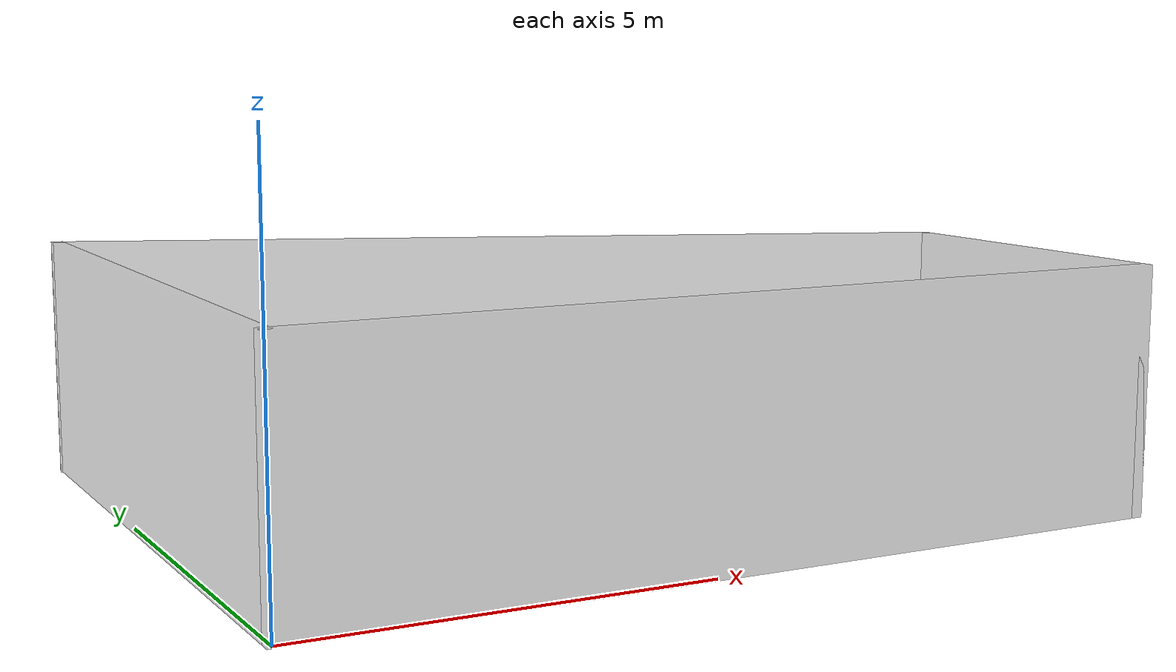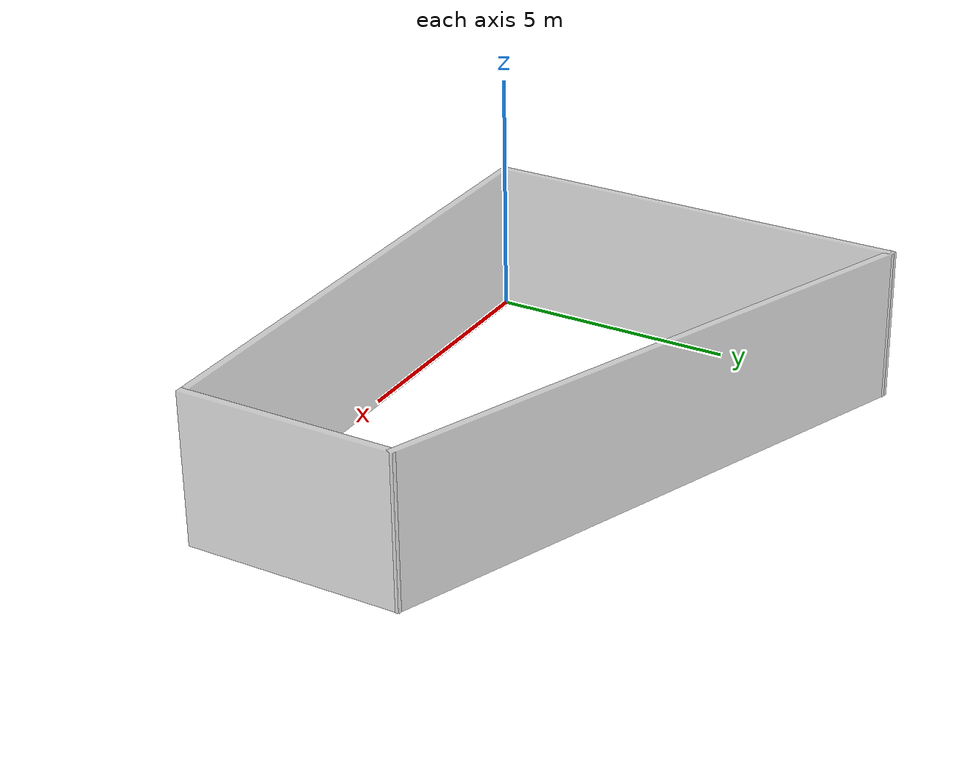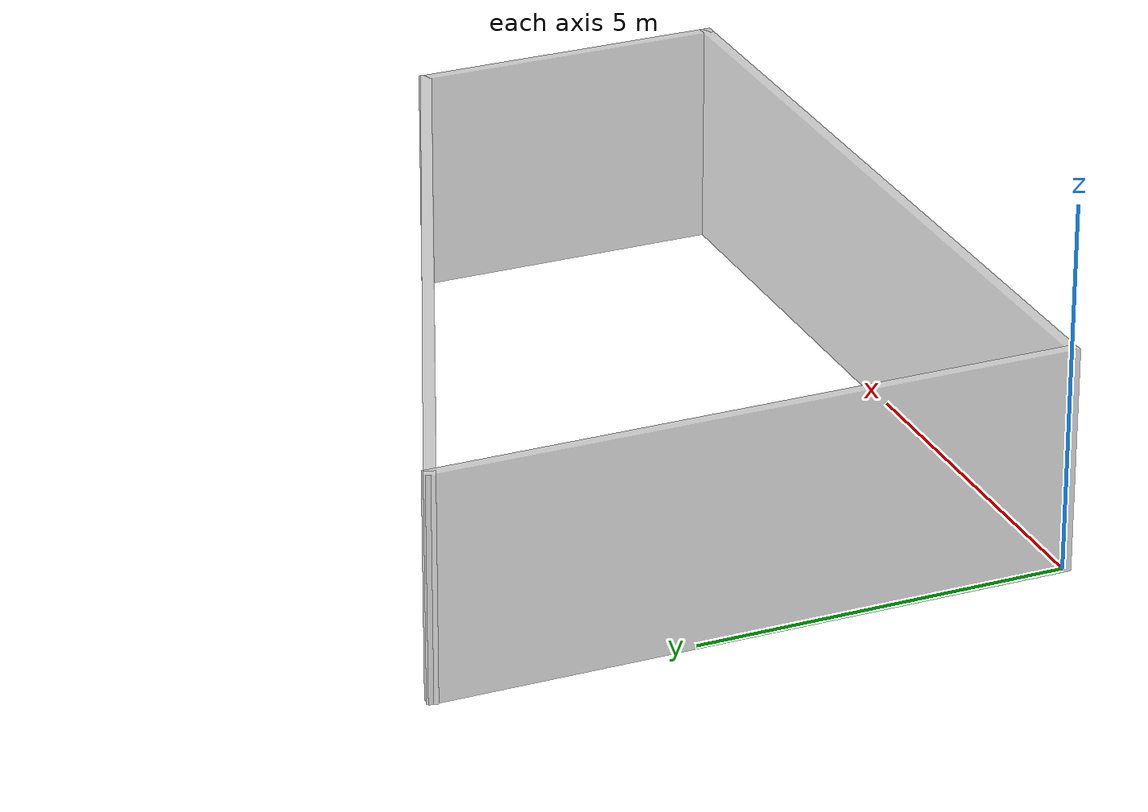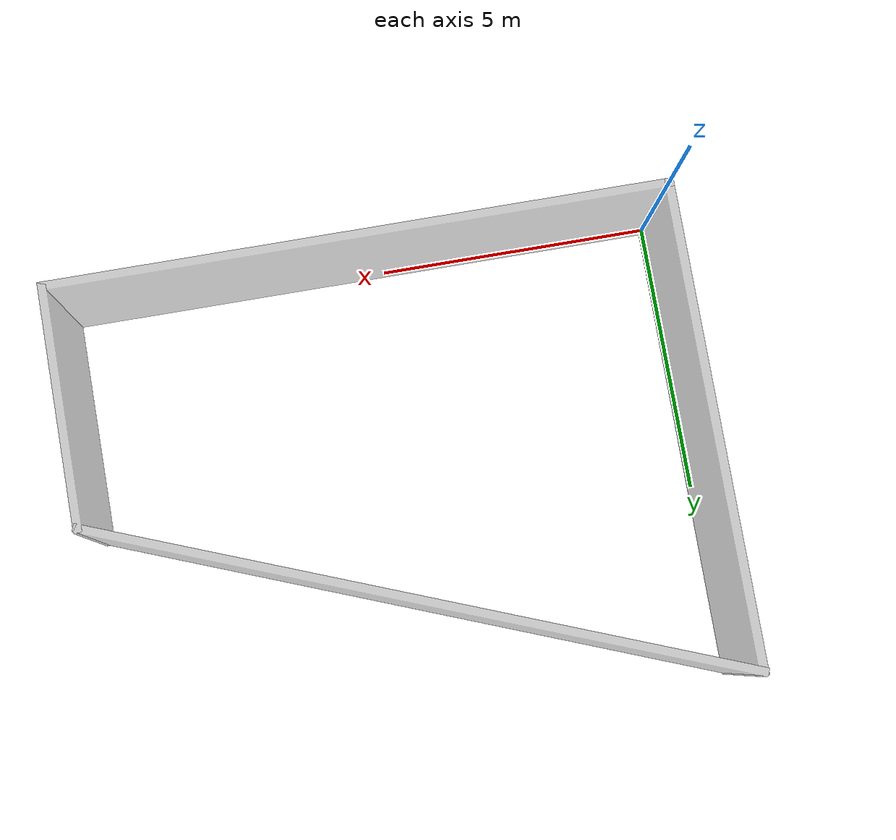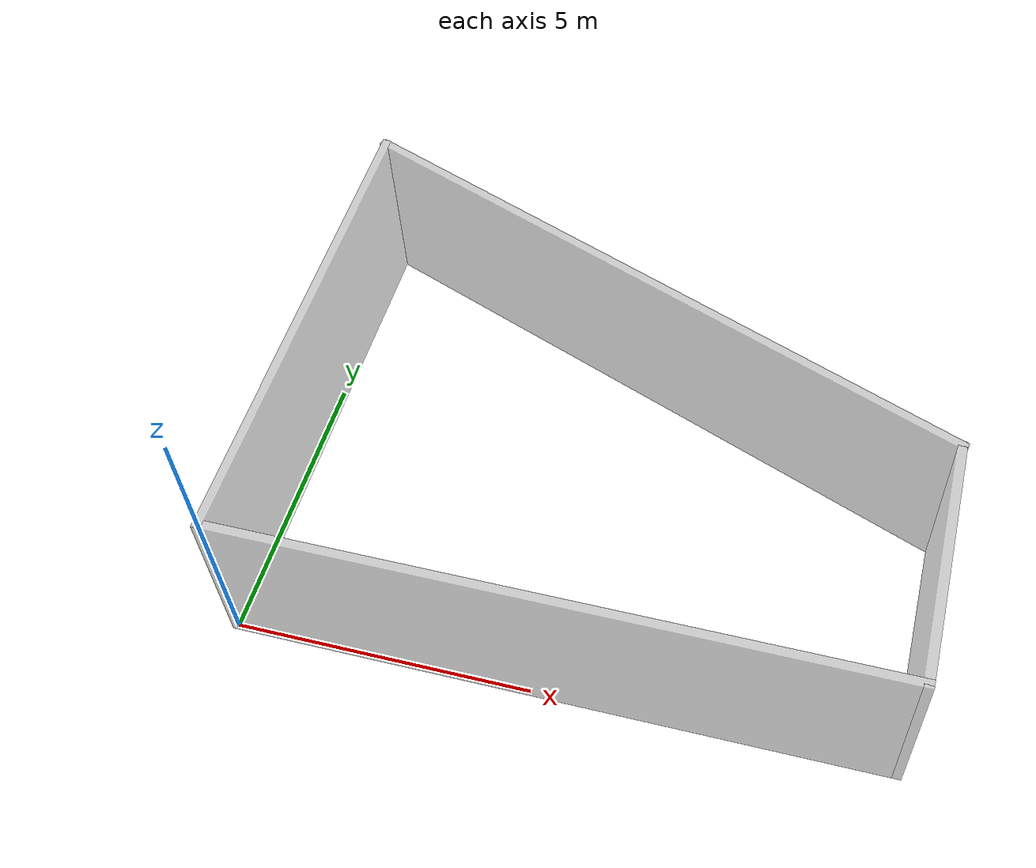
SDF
<?xml version='1.0'?>
<sdf version='1.6'>
  <model name='GCF_lab'>
    <pose frame=''>5.45 4.24108 0 0 -0 0</pose>
    <link name='Wall_0'>
      <collision name='Wall_0_Collision'>
        <geometry>
          <box>
            <size>11.05 0.15 3.08</size>
          </box>
        </geometry>
        <pose frame=''>0 0 1.54 0 -0 0</pose>
      </collision>
      <visual name='Wall_0_Visual'>
        <pose frame=''>0 0 1.54 0 -0 0</pose>
        <geometry>
          <box>
            <size>11.05 0.15 3.08</size>
          </box>
        </geometry>
        <material>
          <script>
            <uri>file://media/materials/scripts/gazebo.material</uri>
            <name>Gazebo/GreyTransparent</name>
          </script>
          <ambient>1 1 1 1</ambient>
        </material>
        <meta>
          <layer>0</layer>
        </meta>
      </visual>
      <pose frame=''>0 -4.24108 0 0 -0 0</pose>
    </link>
    <link name='Wall_2'>
      <collision name='Wall_2_Collision'>
        <geometry>
          <box>
            <size>4.35 0.15 3.08</size>
          </box>
        </geometry>
        <pose frame=''>0 0 1.54 0 -0 0</pose>
      </collision>
      <visual name='Wall_2_Visual'>
        <pose frame=''>0 0 1.54 0 -0 0</pose>
        <geometry>
          <box>
            <size>4.35 0.15 3.08</size>
          </box>
        </geometry>
        <material>
          <script>
            <uri>file://media/materials/scripts/gazebo.material</uri>
            <name>Gazebo/GreyTransparent</name>
          </script>
          <ambient>1 1 1 1</ambient>
        </material>
        <meta>
          <layer>0</layer>
        </meta>
      </visual>
      <pose frame=''>5.45 -2.14108 0 0 -0 1.5708</pose>
    </link>
    <link name='Wall_4'>
      <collision name='Wall_4_Collision'>
        <geometry>
          <box>
            <size>8.61 0.15 3.08</size>
          </box>
        </geometry>
        <pose frame=''>0 0 1.54 0 -0 0</pose>
      </collision>
      <visual name='Wall_4_Visual'>
        <pose frame=''>0 0 1.54 0 -0 0</pose>
        <geometry>
          <box>
            <size>8.61 0.15 3.08</size>
          </box>
        </geometry>
        <material>
          <script>
            <uri>file://media/materials/scripts/gazebo.material</uri>
            <name>Gazebo/GreyTransparent</name>
          </script>
          <ambient>1 1 1 1</ambient>
        </material>
        <meta>
          <layer>0</layer>
        </meta>
      </visual>
      <pose frame=''>-5.45 -0.011078 0 0 -0 1.5708</pose>
    </link>
    <link name='Wall_5'>
      <collision name='Wall_5_Collision'>
        <geometry>
          <box>
            <size>11.8529 0.15 3.08</size>
          </box>
        </geometry>
        <pose frame=''>0 0 1.54 0 -0 0</pose>
      </collision>
      <visual name='Wall_5_Visual'>
        <pose frame=''>0 0 1.54 0 -0 0</pose>
        <geometry>
          <box>
            <size>11.8529 0.15 3.08</size>
          </box>
        </geometry>
        <material>
          <script>
            <uri>file://media/materials/scripts/gazebo.material</uri>
            <name>Gazebo/GreyTransparent</name>
          </script>
          <ambient>1 1 1 1</ambient>
        </material>
        <meta>
          <layer>0</layer>
        </meta>
      </visual>
      <pose frame=''>0 2.08892 0 0 -0 -0.372573</pose>
    </link>
    <static>1</static>
  </model>
</sdf>
